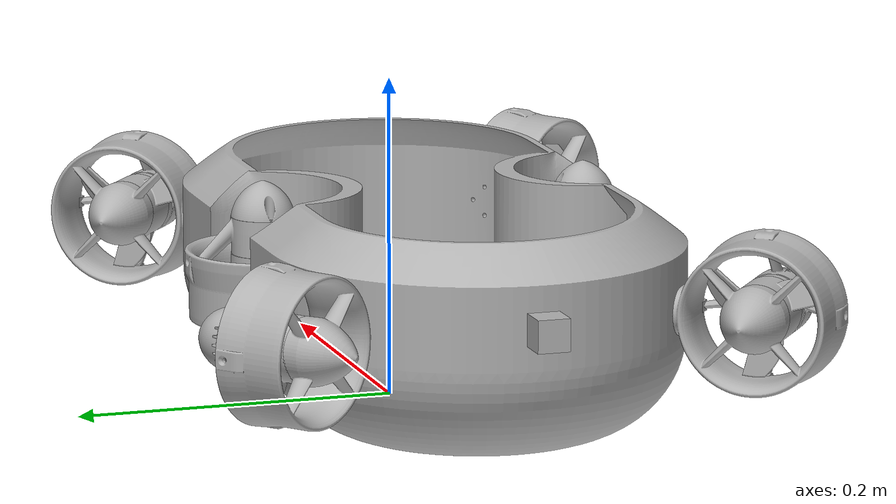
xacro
<?xml version="1.0" ?>
<robot name="Body" xmlns:xacro="http://www.ros.org/wiki/xacro">

<xacro:include filename="$(find fathom_description)/urdf/materials.xacro" />
<xacro:include filename="$(find fathom_description)/urdf/Body.ros2control.xml" />
<xacro:include filename="$(find fathom_description)/urdf/Body.gazebo" />
<link name="base_link">
  <inertial>
    <origin xyz="-1.642714223150474e-09 -0.02560000631566277 0.04831529767943574" rpy="0 0 0"/>
    <mass value="3.567967703380248"/>
    <inertia ixx="0.024636" iyy="0.065446" izz="0.079052" ixy="0.0" iyz="0.0" ixz="0.0"/>
  </inertial>
  <visual>
    <origin xyz="0 0 0" rpy="0 0 0"/>
    <geometry>
      <mesh filename="file://$(find fathom_description)/meshes/base_link.stl" scale="0.001 0.001 0.001"/>
    </geometry>
    <material name="silver"/>
  </visual>
  <collision>
    <origin xyz="0 0 0" rpy="0 0 0"/>
    <geometry>
      <mesh filename="file://$(find fathom_description)/meshes/base_link.stl" scale="0.001 0.001 0.001"/>
    </geometry>
  </collision>
</link>

<link name="main_thruster_urdf_v1__3__1">
  <inertial>
    <origin xyz="-0.03721464935836896 -0.03219644369813632 -4.495782868901843e-07" rpy="0 0 0"/>
    <mass value="0.9025336978695421"/>
    <inertia ixx="0.001085" iyy="0.000969" izz="0.000828" ixy="-0.000223" iyz="0.0" ixz="-0.0"/>
  </inertial>
  <visual>
    <origin xyz="0.165824 0.134549 -0.082445" rpy="0 0 0"/>
    <geometry>
      <mesh filename="file://$(find fathom_description)/meshes/main_thruster_urdf_v1__3__1.stl" scale="0.001 0.001 0.001"/>
    </geometry>
    <material name="silver"/>
  </visual>
  <collision>
    <origin xyz="0.165824 0.134549 -0.082445" rpy="0 0 0"/>
    <geometry>
      <mesh filename="file://$(find fathom_description)/meshes/main_thruster_urdf_v1__3__1.stl" scale="0.001 0.001 0.001"/>
    </geometry>
  </collision>
</link>

<link name="main_thruster_urdf_v1__4__1">
  <inertial>
    <origin xyz="-5.825929008885102e-10 0.048203942385196284 -0.00989363829118968" rpy="0 0 0"/>
    <mass value="0.9025336978695421"/>
    <inertia ixx="0.000828" iyy="0.000797" izz="0.001257" ixy="-0.0" iyz="1e-06" ixz="-0.0"/>
  </inertial>
  <visual>
    <origin xyz="-0.0 -0.032424 -0.081" rpy="0 0 0"/>
    <geometry>
      <mesh filename="file://$(find fathom_description)/meshes/main_thruster_urdf_v1__4__1.stl" scale="0.001 0.001 0.001"/>
    </geometry>
    <material name="silver"/>
  </visual>
  <collision>
    <origin xyz="-0.0 -0.032424 -0.081" rpy="0 0 0"/>
    <geometry>
      <mesh filename="file://$(find fathom_description)/meshes/main_thruster_urdf_v1__4__1.stl" scale="0.001 0.001 0.001"/>
    </geometry>
  </collision>
</link>

<link name="main_thruster_urdf_v1__1__1">
  <inertial>
    <origin xyz="5.825929015798194e-10 -0.04220394238519634 -0.009893638291189735" rpy="0 0 0"/>
    <mass value="0.9025336978695421"/>
    <inertia ixx="0.000828" iyy="0.000797" izz="0.001257" ixy="-0.0" iyz="-1e-06" ixz="0.0"/>
  </inertial>
  <visual>
    <origin xyz="-0.0 0.083624 -0.081" rpy="0 0 0"/>
    <geometry>
      <mesh filename="file://$(find fathom_description)/meshes/main_thruster_urdf_v1__1__1.stl" scale="0.001 0.001 0.001"/>
    </geometry>
    <material name="silver"/>
  </visual>
  <collision>
    <origin xyz="-0.0 0.083624 -0.081" rpy="0 0 0"/>
    <geometry>
      <mesh filename="file://$(find fathom_description)/meshes/main_thruster_urdf_v1__1__1.stl" scale="0.001 0.001 0.001"/>
    </geometry>
  </collision>
</link>

<link name="main_thruster_urdf_v1__2__1">
  <inertial>
    <origin xyz="0.021524866496880346 -0.044251705106683345 -4.4957828670977307e-07" rpy="0 0 0"/>
    <mass value="0.9025336978695421"/>
    <inertia ixx="0.001088" iyy="0.000966" izz="0.000828" ixy="0.000222" iyz="0.0" ixz="-0.0"/>
  </inertial>
  <visual>
    <origin xyz="-0.180164 0.12215 -0.082445" rpy="0 0 0"/>
    <geometry>
      <mesh filename="file://$(find fathom_description)/meshes/main_thruster_urdf_v1__2__1.stl" scale="0.001 0.001 0.001"/>
    </geometry>
    <material name="silver"/>
  </visual>
  <collision>
    <origin xyz="-0.180164 0.12215 -0.082445" rpy="0 0 0"/>
    <geometry>
      <mesh filename="file://$(find fathom_description)/meshes/main_thruster_urdf_v1__2__1.stl" scale="0.001 0.001 0.001"/>
    </geometry>
  </collision>
</link>

<link name="main_thruster_urdf_v1_1">
  <inertial>
    <origin xyz="0.021524939518667352 0.04425164374676878 -4.4841310072041285e-07" rpy="0 0 0"/>
    <mass value="0.9025336978695421"/>
    <inertia ixx="0.001088" iyy="0.000966" izz="0.000828" ixy="-0.000222" iyz="0.0" ixz="0.0"/>
  </inertial>
  <visual>
    <origin xyz="-0.181006 -0.072046 -0.082445" rpy="0 0 0"/>
    <geometry>
      <mesh filename="file://$(find fathom_description)/meshes/main_thruster_urdf_v1_1.stl" scale="0.001 0.001 0.001"/>
    </geometry>
    <material name="silver"/>
  </visual>
  <collision>
    <origin xyz="-0.181006 -0.072046 -0.082445" rpy="0 0 0"/>
    <geometry>
      <mesh filename="file://$(find fathom_description)/meshes/main_thruster_urdf_v1_1.stl" scale="0.001 0.001 0.001"/>
    </geometry>
  </collision>
</link>

<link name="hello_1">
  <inertial>
    <origin xyz="-0.037214492439706676 0.032196580055163626 -4.4841310060939055e-07" rpy="0 0 0"/>
    <mass value="0.9025336978695421"/>
    <inertia ixx="0.001085" iyy="0.000969" izz="0.000828" ixy="0.000223" iyz="0.0" ixz="0.0"/>
  </inertial>
  <visual>
    <origin xyz="0.165039 -0.082327 -0.082445" rpy="0 0 0"/>
    <geometry>
      <mesh filename="file://$(find fathom_description)/meshes/hello_1.stl" scale="0.001 0.001 0.001"/>
    </geometry>
    <material name="silver"/>
  </visual>
  <collision>
    <origin xyz="0.165039 -0.082327 -0.082445" rpy="0 0 0"/>
    <geometry>
      <mesh filename="file://$(find fathom_description)/meshes/hello_1.stl" scale="0.001 0.001 0.001"/>
    </geometry>
  </collision>
</link>

<link name="pro_thru_urdf_v1__4__1">
  <inertial>
    <origin xyz="-2.0026821119551342e-07 -1.567978892974553e-07 0.011172331047509643" rpy="0 0 0"/>
    <mass value="0.06247004422548632"/>
    <inertia ixx="1.9e-05" iyy="1.9e-05" izz="2.9e-05" ixy="0.0" iyz="0.0" ixz="0.0"/>
  </inertial>
  <visual>
    <origin xyz="0.00011 -0.081424 -0.066709" rpy="0 0 0"/>
    <geometry>
      <mesh filename="file://$(find fathom_description)/meshes/pro_thru_urdf_v1__4__1.stl" scale="0.001 0.001 0.001"/>
    </geometry>
    <material name="silver"/>
  </visual>
  <collision>
    <origin xyz="0.00011 -0.081424 -0.066709" rpy="0 0 0"/>
    <geometry>
      <mesh filename="file://$(find fathom_description)/meshes/pro_thru_urdf_v1__4__1.stl" scale="0.001 0.001 0.001"/>
    </geometry>
  </collision>
</link>

<link name="pro_thru_urdf_v1__5__1">
  <inertial>
    <origin xyz="0.00885894015052649 0.006807356288790395 -4.0946181681378313e-07" rpy="0 0 0"/>
    <mass value="0.06247004422548632"/>
    <inertia ixx="2.5e-05" iyy="2.3e-05" izz="1.9e-05" ixy="5e-06" iyz="0.0" ixz="-0.0"/>
  </inertial>
  <visual>
    <origin xyz="-0.19862 0.169625 -0.082445" rpy="0 0 0"/>
    <geometry>
      <mesh filename="file://$(find fathom_description)/meshes/pro_thru_urdf_v1__5__1.stl" scale="0.001 0.001 0.001"/>
    </geometry>
    <material name="silver"/>
  </visual>
  <collision>
    <origin xyz="-0.19862 0.169625 -0.082445" rpy="0 0 0"/>
    <geometry>
      <mesh filename="file://$(find fathom_description)/meshes/pro_thru_urdf_v1__5__1.stl" scale="0.001 0.001 0.001"/>
    </geometry>
  </collision>
</link>

<link name="pro_thru_urdf_v1__2__1">
  <inertial>
    <origin xyz="0.008859165393431512 -0.006807020579821119 4.064635554801299e-07" rpy="0 0 0"/>
    <mass value="0.06247004422548632"/>
    <inertia ixx="2.5e-05" iyy="2.3e-05" izz="1.9e-05" ixy="-5e-06" iyz="0.0" ixz="0.0"/>
  </inertial>
  <visual>
    <origin xyz="-0.199529 -0.119608 -0.082334" rpy="0 0 0"/>
    <geometry>
      <mesh filename="file://$(find fathom_description)/meshes/pro_thru_urdf_v1__2__1.stl" scale="0.001 0.001 0.001"/>
    </geometry>
    <material name="silver"/>
  </visual>
  <collision>
    <origin xyz="-0.199529 -0.119608 -0.082334" rpy="0 0 0"/>
    <geometry>
      <mesh filename="file://$(find fathom_description)/meshes/pro_thru_urdf_v1__2__1.stl" scale="0.001 0.001 0.001"/>
    </geometry>
  </collision>
</link>

<link name="pro_thru_urdf_v1__1__1">
  <inertial>
    <origin xyz="-1.4454075079677834e-07 1.0107042899831775e-07 0.011172331047510711" rpy="0 0 0"/>
    <mass value="0.06247004422548632"/>
    <inertia ixx="1.9e-05" iyy="1.9e-05" izz="2.9e-05" ixy="-0.0" iyz="0.0" ixz="-0.0"/>
  </inertial>
  <visual>
    <origin xyz="0.00011 0.126624 -0.066709" rpy="0 0 0"/>
    <geometry>
      <mesh filename="file://$(find fathom_description)/meshes/pro_thru_urdf_v1__1__1.stl" scale="0.001 0.001 0.001"/>
    </geometry>
    <material name="silver"/>
  </visual>
  <collision>
    <origin xyz="0.00011 0.126624 -0.066709" rpy="0 0 0"/>
    <geometry>
      <mesh filename="file://$(find fathom_description)/meshes/pro_thru_urdf_v1__1__1.stl" scale="0.001 0.001 0.001"/>
    </geometry>
  </collision>
</link>

<link name="pro_thru_urdf_v1_1">
  <inertial>
    <origin xyz="0.008858682154653963 -0.006806403194302757 4.0646355511930743e-07" rpy="0 0 0"/>
    <mass value="0.06247004422548632"/>
    <inertia ixx="2.5e-05" iyy="2.3e-05" izz="1.9e-05" ixy="-5e-06" iyz="0.0" ixz="0.0"/>
  </inertial>
  <visual>
    <origin xyz="0.20701 0.164698 -0.082334" rpy="0 0 0"/>
    <geometry>
      <mesh filename="file://$(find fathom_description)/meshes/pro_thru_urdf_v1_1.stl" scale="0.001 0.001 0.001"/>
    </geometry>
    <material name="silver"/>
  </visual>
  <collision>
    <origin xyz="0.20701 0.164698 -0.082334" rpy="0 0 0"/>
    <geometry>
      <mesh filename="file://$(find fathom_description)/meshes/pro_thru_urdf_v1_1.stl" scale="0.001 0.001 0.001"/>
    </geometry>
  </collision>
</link>

<link name="support_thru_urdf_v1__5__1">
  <inertial>
    <origin xyz="0.0004906283719715299 -0.0003762814257698699 0.043657478810742986" rpy="0 0 0"/>
    <mass value="0.5240955387817633"/>
    <inertia ixx="0.00015" iyy="0.000162" izz="0.000179" ixy="2.2e-05" iyz="-0.0" ixz="0.0"/>
  </inertial>
  <visual>
    <origin xyz="0.186462 0.180486 -0.038672" rpy="0 0 0"/>
    <geometry>
      <mesh filename="file://$(find fathom_description)/meshes/support_thru_urdf_v1__5__1.stl" scale="0.001 0.001 0.001"/>
    </geometry>
    <material name="silver"/>
  </visual>
  <collision>
    <origin xyz="0.186462 0.180486 -0.038672" rpy="0 0 0"/>
    <geometry>
      <mesh filename="file://$(find fathom_description)/meshes/support_thru_urdf_v1__5__1.stl" scale="0.001 0.001 0.001"/>
    </geometry>
  </collision>
</link>

<link name="support_thru_urdf_v1__4__1">
  <inertial>
    <origin xyz="0.04365792780643713 -4.37081340565193e-07 0.0006180502689701189" rpy="0 0 0"/>
    <mass value="0.5240955387817633"/>
    <inertia ixx="0.000179" iyy="0.000179" izz="0.000133" ixy="0.0" iyz="0.0" ixz="0.0"/>
  </inertial>
  <visual>
    <origin xyz="0.043773 0.126624 -0.092623" rpy="0 0 0"/>
    <geometry>
      <mesh filename="file://$(find fathom_description)/meshes/support_thru_urdf_v1__4__1.stl" scale="0.001 0.001 0.001"/>
    </geometry>
    <material name="silver"/>
  </visual>
  <collision>
    <origin xyz="0.043773 0.126624 -0.092623" rpy="0 0 0"/>
    <geometry>
      <mesh filename="file://$(find fathom_description)/meshes/support_thru_urdf_v1__4__1.stl" scale="0.001 0.001 0.001"/>
    </geometry>
  </collision>
</link>

<link name="support_thru_urdf_v1__3__1">
  <inertial>
    <origin xyz="0.0004901116107489667 -0.000375898811287953 0.043657478810743416" rpy="0 0 0"/>
    <mass value="0.5240955387817633"/>
    <inertia ixx="0.00015" iyy="0.000162" izz="0.000179" ixy="2.2e-05" iyz="-0.0" ixz="0.0"/>
  </inertial>
  <visual>
    <origin xyz="-0.220078 -0.103819 -0.038672" rpy="0 0 0"/>
    <geometry>
      <mesh filename="file://$(find fathom_description)/meshes/support_thru_urdf_v1__3__1.stl" scale="0.001 0.001 0.001"/>
    </geometry>
    <material name="silver"/>
  </visual>
  <collision>
    <origin xyz="-0.220078 -0.103819 -0.038672" rpy="0 0 0"/>
    <geometry>
      <mesh filename="file://$(find fathom_description)/meshes/support_thru_urdf_v1__3__1.stl" scale="0.001 0.001 0.001"/>
    </geometry>
  </collision>
</link>

<link name="support_thru_urdf_v1__2__1">
  <inertial>
    <origin xyz="0.027092230602163175 -0.03424591201581477 -5.337114628994888e-06" rpy="0 0 0"/>
    <mass value="0.5240955387817633"/>
    <inertia ixx="0.00015" iyy="0.000162" izz="0.000179" ixy="-2.2e-05" iyz="0.0" ixz="0.0"/>
  </inertial>
  <visual>
    <origin xyz="-0.192566 0.119213 -0.082445" rpy="0 0 0"/>
    <geometry>
      <mesh filename="file://$(find fathom_description)/meshes/support_thru_urdf_v1__2__1.stl" scale="0.001 0.001 0.001"/>
    </geometry>
    <material name="silver"/>
  </visual>
  <collision>
    <origin xyz="-0.192566 0.119213 -0.082445" rpy="0 0 0"/>
    <geometry>
      <mesh filename="file://$(find fathom_description)/meshes/support_thru_urdf_v1__2__1.stl" scale="0.001 0.001 0.001"/>
    </geometry>
  </collision>
</link>

<link name="support_thru_urdf_v1_1">
  <inertial>
    <origin xyz="0.043662261580020234 4.770854922758749e-06 0.0006180502689701883" rpy="0 0 0"/>
    <mass value="0.5240955387817633"/>
    <inertia ixx="0.000179" iyy="0.000179" izz="0.000133" ixy="-0.0" iyz="-0.0" ixz="0.0"/>
  </inertial>
  <visual>
    <origin xyz="0.043773 -0.081424 -0.092623" rpy="0 0 0"/>
    <geometry>
      <mesh filename="file://$(find fathom_description)/meshes/support_thru_urdf_v1_1.stl" scale="0.001 0.001 0.001"/>
    </geometry>
    <material name="silver"/>
  </visual>
  <collision>
    <origin xyz="0.043773 -0.081424 -0.092623" rpy="0 0 0"/>
    <geometry>
      <mesh filename="file://$(find fathom_description)/meshes/support_thru_urdf_v1_1.stl" scale="0.001 0.001 0.001"/>
    </geometry>
  </collision>
</link>

<link name="pro_thru_urdf_v1__3__1">
  <inertial>
    <origin xyz="0.008858805119924124 0.006806583740888633 3.507360955001815e-07" rpy="0 0 0"/>
    <mass value="0.06247004422548632"/>
    <inertia ixx="2.5e-05" iyy="2.3e-05" izz="1.9e-05" ixy="5e-06" iyz="-0.0" ixz="0.0"/>
  </inertial>
  <visual>
    <origin xyz="0.206225 -0.112476 -0.082334" rpy="0 0 0"/>
    <geometry>
      <mesh filename="file://$(find fathom_description)/meshes/pro_thru_urdf_v1__3__1.stl" scale="0.001 0.001 0.001"/>
    </geometry>
    <material name="silver"/>
  </visual>
  <collision>
    <origin xyz="0.206225 -0.112476 -0.082334" rpy="0 0 0"/>
    <geometry>
      <mesh filename="file://$(find fathom_description)/meshes/pro_thru_urdf_v1__3__1.stl" scale="0.001 0.001 0.001"/>
    </geometry>
  </collision>
</link>

<link name="support_thru_urdf_v1__1__1">
  <inertial>
    <origin xyz="0.0004934257539291054 0.00037298128064372493 0.04366181258432679" rpy="0 0 0"/>
    <mass value="0.5240955387817633"/>
    <inertia ixx="0.00015" iyy="0.000162" izz="0.000179" ixy="-2.2e-05" iyz="0.0" ixz="-0.0"/>
  </inertial>
  <visual>
    <origin xyz="0.185677 -0.128264 -0.038672" rpy="0 0 0"/>
    <geometry>
      <mesh filename="file://$(find fathom_description)/meshes/support_thru_urdf_v1__1__1.stl" scale="0.001 0.001 0.001"/>
    </geometry>
    <material name="silver"/>
  </visual>
  <collision>
    <origin xyz="0.185677 -0.128264 -0.038672" rpy="0 0 0"/>
    <geometry>
      <mesh filename="file://$(find fathom_description)/meshes/support_thru_urdf_v1__1__1.stl" scale="0.001 0.001 0.001"/>
    </geometry>
  </collision>
</link>

<link name="back_thru_urdf_v1__4__1">
  <inertial>
    <origin xyz="-0.0014297582049557223 0.01892120855582738 0.0007229818356684486" rpy="0 0 0"/>
    <mass value="0.03746286794566644"/>
    <inertia ixx="8e-06" iyy="7e-06" izz="6e-06" ixy="1e-06" iyz="0.0" ixz="0.0"/>
  </inertial>
  <visual>
    <origin xyz="-0.249559 0.150505 -0.082445" rpy="0 0 0"/>
    <geometry>
      <mesh filename="file://$(find fathom_description)/meshes/back_thru_urdf_v1__4__1.stl" scale="0.001 0.001 0.001"/>
    </geometry>
    <material name="silver"/>
  </visual>
  <collision>
    <origin xyz="-0.249559 0.150505 -0.082445" rpy="0 0 0"/>
    <geometry>
      <mesh filename="file://$(find fathom_description)/meshes/back_thru_urdf_v1__4__1.stl" scale="0.001 0.001 0.001"/>
    </geometry>
  </collision>
</link>

<link name="back_thru_urdf_v1__5__1">
  <inertial>
    <origin xyz="-0.0014305526947672176 -0.018920898528533528 -0.0007230639016837098" rpy="0 0 0"/>
    <mass value="0.03746286794566644"/>
    <inertia ixx="8e-06" iyy="7e-06" izz="6e-06" ixy="-1e-06" iyz="0.0" ixz="-0.0"/>
  </inertial>
  <visual>
    <origin xyz="-0.250469 -0.100488 -0.082334" rpy="0 0 0"/>
    <geometry>
      <mesh filename="file://$(find fathom_description)/meshes/back_thru_urdf_v1__5__1.stl" scale="0.001 0.001 0.001"/>
    </geometry>
    <material name="silver"/>
  </visual>
  <collision>
    <origin xyz="-0.250469 -0.100488 -0.082334" rpy="0 0 0"/>
    <geometry>
      <mesh filename="file://$(find fathom_description)/meshes/back_thru_urdf_v1__5__1.stl" scale="0.001 0.001 0.001"/>
    </geometry>
  </collision>
</link>

<link name="back_thru_urdf_v1__3__1">
  <inertial>
    <origin xyz="-0.015875101313479294 -0.0007235480953746293 0.007219358895695388" rpy="0 0 0"/>
    <mass value="0.03746286794566644"/>
    <inertia ixx="6e-06" iyy="6e-06" izz="9e-06" ixy="0.0" iyz="-0.0" ixz="-0.0"/>
  </inertial>
  <visual>
    <origin xyz="-0.015765 -0.081424 -0.118751" rpy="0 0 0"/>
    <geometry>
      <mesh filename="file://$(find fathom_description)/meshes/back_thru_urdf_v1__3__1.stl" scale="0.001 0.001 0.001"/>
    </geometry>
    <material name="silver"/>
  </visual>
  <collision>
    <origin xyz="-0.015765 -0.081424 -0.118751" rpy="0 0 0"/>
    <geometry>
      <mesh filename="file://$(find fathom_description)/meshes/back_thru_urdf_v1__3__1.stl" scale="0.001 0.001 0.001"/>
    </geometry>
  </collision>
</link>

<link name="back_thru_urdf_v1__2__1">
  <inertial>
    <origin xyz="0.0007232467567344729 -0.015874799974839995 0.007219358895695249" rpy="0 0 0"/>
    <mass value="0.03746286794566644"/>
    <inertia ixx="6e-06" iyy="6e-06" izz="9e-06" ixy="-0.0" iyz="-0.0" ixz="0.0"/>
  </inertial>
  <visual>
    <origin xyz="0.00011 0.110749 -0.118751" rpy="0 0 0"/>
    <geometry>
      <mesh filename="file://$(find fathom_description)/meshes/back_thru_urdf_v1__2__1.stl" scale="0.001 0.001 0.001"/>
    </geometry>
    <material name="silver"/>
  </visual>
  <collision>
    <origin xyz="0.00011 0.110749 -0.118751" rpy="0 0 0"/>
    <geometry>
      <mesh filename="file://$(find fathom_description)/meshes/back_thru_urdf_v1__2__1.stl" scale="0.001 0.001 0.001"/>
    </geometry>
  </collision>
</link>

<link name="back_thru_urdf_v1__1__1">
  <inertial>
    <origin xyz="0.008682839447360452 0.00575883257370749 -0.015874715831469863" rpy="0 0 0"/>
    <mass value="0.03746286794566644"/>
    <inertia ixx="8e-06" iyy="7e-06" izz="6e-06" ixy="1e-06" iyz="-0.0" ixz="0.0"/>
  </inertial>
  <visual>
    <origin xyz="0.164958 -0.144184 -0.098209" rpy="0 0 0"/>
    <geometry>
      <mesh filename="file://$(find fathom_description)/meshes/back_thru_urdf_v1__1__1.stl" scale="0.001 0.001 0.001"/>
    </geometry>
    <material name="silver"/>
  </visual>
  <collision>
    <origin xyz="0.164958 -0.144184 -0.098209" rpy="0 0 0"/>
    <geometry>
      <mesh filename="file://$(find fathom_description)/meshes/back_thru_urdf_v1__1__1.stl" scale="0.001 0.001 0.001"/>
    </geometry>
  </collision>
</link>

<link name="back_thru_urdf_v1_1">
  <inertial>
    <origin xyz="0.0179139640664554 0.006255718856984643 -0.0007230639016839874" rpy="0 0 0"/>
    <mass value="0.03746286794566644"/>
    <inertia ixx="8e-06" iyy="7e-06" izz="6e-06" ixy="-1e-06" iyz="0.0" ixz="-0.0"/>
  </inertial>
  <visual>
    <origin xyz="0.175415 0.208994 -0.082334" rpy="0 0 0"/>
    <geometry>
      <mesh filename="file://$(find fathom_description)/meshes/back_thru_urdf_v1_1.stl" scale="0.001 0.001 0.001"/>
    </geometry>
    <material name="silver"/>
  </visual>
  <collision>
    <origin xyz="0.175415 0.208994 -0.082334" rpy="0 0 0"/>
    <geometry>
      <mesh filename="file://$(find fathom_description)/meshes/back_thru_urdf_v1_1.stl" scale="0.001 0.001 0.001"/>
    </geometry>
  </collision>
</link>

<link name="camera_1">
  <inertial>
    <origin xyz="0.010000000000000092 -2.0816681711721685e-17 1.3877787807814457e-17" rpy="0 0 0"/>
    <mass value="0.0628"/>
    <inertia ixx="4e-06" iyy="4e-06" izz="4e-06" ixy="0.0" iyz="-0.0" ixz="0.0"/>
  </inertial>
  <visual>
    <origin xyz="-0.224 0.0256 -0.089885" rpy="0 0 0"/>
    <geometry>
      <mesh filename="file://$(find fathom_description)/meshes/camera_1.stl" scale="0.001 0.001 0.001"/>
    </geometry>
    <material name="silver"/>
  </visual>
  <collision>
    <origin xyz="-0.224 0.0256 -0.089885" rpy="0 0 0"/>
    <geometry>
      <mesh filename="file://$(find fathom_description)/meshes/camera_1.stl" scale="0.001 0.001 0.001"/>
    </geometry>
  </collision>
</link>

<link name="sensor_1">
  <inertial>
    <origin xyz="-0.010000000000000092 -2.0816681711721685e-17 1.3877787807814457e-17" rpy="0 0 0"/>
    <mass value="0.0628"/>
    <inertia ixx="4e-06" iyy="4e-06" izz="4e-06" ixy="0.0" iyz="-0.0" ixz="-0.0"/>
  </inertial>
  <visual>
    <origin xyz="0.224 0.0256 -0.089885" rpy="0 0 0"/>
    <geometry>
      <mesh filename="file://$(find fathom_description)/meshes/sensor_1.stl" scale="0.001 0.001 0.001"/>
    </geometry>
    <material name="silver"/>
  </visual>
  <collision>
    <origin xyz="0.224 0.0256 -0.089885" rpy="0 0 0"/>
    <geometry>
      <mesh filename="file://$(find fathom_description)/meshes/sensor_1.stl" scale="0.001 0.001 0.001"/>
    </geometry>
  </collision>
</link>

<joint name="Rigid 1" type="fixed">
  <origin xyz="-0.165824 -0.134549 0.082445" rpy="0 0 0"/>
  <parent link="base_link"/>
  <child link="main_thruster_urdf_v1__3__1"/>
</joint>

<joint name="Rigid 2" type="fixed">
  <origin xyz="0.0 0.032424 0.081" rpy="0 0 0"/>
  <parent link="base_link"/>
  <child link="main_thruster_urdf_v1__4__1"/>
</joint>

<joint name="Rigid 3" type="fixed">
  <origin xyz="0.0 -0.083624 0.081" rpy="0 0 0"/>
  <parent link="base_link"/>
  <child link="main_thruster_urdf_v1__1__1"/>
</joint>

<joint name="Rigid 4" type="fixed">
  <origin xyz="0.180164 -0.12215 0.082445" rpy="0 0 0"/>
  <parent link="base_link"/>
  <child link="main_thruster_urdf_v1__2__1"/>
</joint>

<joint name="Rigid 5" type="fixed">
  <origin xyz="0.181006 0.072046 0.082445" rpy="0 0 0"/>
  <parent link="base_link"/>
  <child link="main_thruster_urdf_v1_1"/>
</joint>

<joint name="Rigid 6" type="fixed">
  <origin xyz="-0.165039 0.082327 0.082445" rpy="0 0 0"/>
  <parent link="base_link"/>
  <child link="hello_1"/>
</joint>

<joint name="Revolute 7" type="continuous">
  <origin xyz="0.043663 0.0 -0.025914" rpy="0 0 0"/>
  <parent link="support_thru_urdf_v1_1"/>
  <child link="pro_thru_urdf_v1__4__1"/>
  <axis xyz="0.0 0.0 -1.0"/>
</joint>

<joint name="Revolute 8" type="continuous">
  <origin xyz="0.006054 -0.050412 0.0" rpy="0 0 0"/>
  <parent link="support_thru_urdf_v1__2__1"/>
  <child link="pro_thru_urdf_v1__5__1"/>
  <axis xyz="-0.792958 -0.609276 -0.0"/>
</joint>

<joint name="Revolute 10" type="continuous">
  <origin xyz="-0.020549 0.015789 0.043662" rpy="0 0 0"/>
  <parent link="support_thru_urdf_v1__3__1"/>
  <child link="pro_thru_urdf_v1__2__1"/>
  <axis xyz="-0.792958 0.609276 0.0"/>
</joint>

<joint name="Revolute 11" type="continuous">
  <origin xyz="0.043663 0.0 -0.025914" rpy="0 0 0"/>
  <parent link="support_thru_urdf_v1__4__1"/>
  <child link="pro_thru_urdf_v1__1__1"/>
  <axis xyz="0.0 -0.0 -1.0"/>
</joint>

<joint name="Revolute 12" type="continuous">
  <origin xyz="-0.020548 0.015788 0.043662" rpy="0 0 0"/>
  <parent link="support_thru_urdf_v1__5__1"/>
  <child link="pro_thru_urdf_v1_1"/>
  <axis xyz="-0.792958 0.609276 0.0"/>
</joint>

<joint name="Rigid 13" type="fixed">
  <origin xyz="-0.020638 -0.045937 -0.043773" rpy="0 0 0"/>
  <parent link="main_thruster_urdf_v1__3__1"/>
  <child link="support_thru_urdf_v1__5__1"/>
</joint>

<joint name="Rigid 14" type="fixed">
  <origin xyz="-0.043773 -0.043 0.011623" rpy="0 0 0"/>
  <parent link="main_thruster_urdf_v1__1__1"/>
  <child link="support_thru_urdf_v1__4__1"/>
</joint>

<joint name="Rigid 15" type="fixed">
  <origin xyz="0.039072 0.031773 -0.043773" rpy="0 0 0"/>
  <parent link="main_thruster_urdf_v1_1"/>
  <child link="support_thru_urdf_v1__3__1"/>
</joint>

<joint name="Rigid 16" type="fixed">
  <origin xyz="0.012402 0.002937 0.0" rpy="0 0 0"/>
  <parent link="main_thruster_urdf_v1__2__1"/>
  <child link="support_thru_urdf_v1__2__1"/>
</joint>

<joint name="Rigid 17" type="fixed">
  <origin xyz="-0.043773 0.049 0.011623" rpy="0 0 0"/>
  <parent link="main_thruster_urdf_v1__4__1"/>
  <child link="support_thru_urdf_v1_1"/>
</joint>

<joint name="Revolute 18" type="continuous">
  <origin xyz="-0.020548 -0.015788 0.043662" rpy="0 0 0"/>
  <parent link="support_thru_urdf_v1__1__1"/>
  <child link="pro_thru_urdf_v1__3__1"/>
  <axis xyz="-0.792958 -0.609276 -0.0"/>
</joint>

<joint name="Rigid 19" type="fixed">
  <origin xyz="-0.020638 0.045937 -0.043773" rpy="0 0 0"/>
  <parent link="hello_1"/>
  <child link="support_thru_urdf_v1__1__1"/>
</joint>

<joint name="Rigid 20" type="fixed">
  <origin xyz="0.056993 -0.031292 0.0" rpy="0 0 0"/>
  <parent link="support_thru_urdf_v1__2__1"/>
  <child link="back_thru_urdf_v1__4__1"/>
</joint>

<joint name="Rigid 21" type="fixed">
  <origin xyz="0.030391 -0.003331 0.043662" rpy="0 0 0"/>
  <parent link="support_thru_urdf_v1__3__1"/>
  <child link="back_thru_urdf_v1__5__1"/>
</joint>

<joint name="Rigid 22" type="fixed">
  <origin xyz="0.059538 0.0 0.026128" rpy="0 0 0"/>
  <parent link="support_thru_urdf_v1_1"/>
  <child link="back_thru_urdf_v1__3__1"/>
</joint>

<joint name="Rigid 23" type="fixed">
  <origin xyz="0.043663 0.015875 0.026128" rpy="0 0 0"/>
  <parent link="support_thru_urdf_v1__4__1"/>
  <child link="back_thru_urdf_v1__2__1"/>
</joint>

<joint name="Rigid 24" type="fixed">
  <origin xyz="0.020719 0.01592 0.059537" rpy="0 0 0"/>
  <parent link="support_thru_urdf_v1__1__1"/>
  <child link="back_thru_urdf_v1__1__1"/>
</joint>

<joint name="Rigid 25" type="fixed">
  <origin xyz="0.011047 -0.028508 0.043662" rpy="0 0 0"/>
  <parent link="support_thru_urdf_v1__5__1"/>
  <child link="back_thru_urdf_v1_1"/>
</joint>

<joint name="Rigid 26" type="fixed">
  <origin xyz="0.224 -0.0256 0.089885" rpy="0 0 0"/>
  <parent link="base_link"/>
  <child link="camera_1"/>
</joint>

<joint name="Rigid 27" type="fixed">
  <origin xyz="-0.224 -0.0256 0.089885" rpy="0 0 0"/>
  <parent link="base_link"/>
  <child link="sensor_1"/>
</joint>

</robot>

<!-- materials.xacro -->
<robot name="Body" xmlns:xacro="http://www.ros.org/wiki/xacro" >

<material name="silver">
  <color rgba="0.700 0.700 0.700 1.000"/>
</material>

</robot>

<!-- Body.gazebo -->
<robot name="Body" xmlns:xacro="http://www.ros.org/wiki/xacro" >

<xacro:property name="body_color" value="Gazebo/Silver" />

<gazebo reference="base_link">
  <material>${body_color}</material>
  <mu1>0.2</mu1>
  <mu2>0.2</mu2>
  <self_collide>true</self_collide>
  <gravity>true</gravity>
</gazebo>

<gazebo reference="main_thruster_urdf_v1__3__1">
  <material>${body_color}</material>
  <mu1>0.2</mu1>
  <mu2>0.2</mu2>
  <self_collide>true</self_collide>
</gazebo>

<gazebo reference="main_thruster_urdf_v1__4__1">
  <material>${body_color}</material>
  <mu1>0.2</mu1>
  <mu2>0.2</mu2>
  <self_collide>true</self_collide>
</gazebo>

<gazebo reference="main_thruster_urdf_v1__1__1">
  <material>${body_color}</material>
  <mu1>0.2</mu1>
  <mu2>0.2</mu2>
  <self_collide>true</self_collide>
</gazebo>

<gazebo reference="main_thruster_urdf_v1__2__1">
  <material>${body_color}</material>
  <mu1>0.2</mu1>
  <mu2>0.2</mu2>
  <self_collide>true</self_collide>
</gazebo>

<gazebo reference="main_thruster_urdf_v1_1">
  <material>${body_color}</material>
  <mu1>0.2</mu1>
  <mu2>0.2</mu2>
  <self_collide>true</self_collide>
</gazebo>

<gazebo reference="hello_1">
  <material>${body_color}</material>
  <mu1>0.2</mu1>
  <mu2>0.2</mu2>
  <self_collide>true</self_collide>
</gazebo>

<gazebo reference="pro_thru_urdf_v1__4__1">
  <material>${body_color}</material>
  <mu1>0.2</mu1>
  <mu2>0.2</mu2>
  <self_collide>true</self_collide>
</gazebo>

<gazebo reference="pro_thru_urdf_v1__5__1">
  <material>${body_color}</material>
  <mu1>0.2</mu1>
  <mu2>0.2</mu2>
  <self_collide>true</self_collide>
</gazebo>

<gazebo reference="pro_thru_urdf_v1__2__1">
  <material>${body_color}</material>
  <mu1>0.2</mu1>
  <mu2>0.2</mu2>
  <self_collide>true</self_collide>
</gazebo>

<gazebo reference="pro_thru_urdf_v1__1__1">
  <material>${body_color}</material>
  <mu1>0.2</mu1>
  <mu2>0.2</mu2>
  <self_collide>true</self_collide>
</gazebo>

<gazebo reference="pro_thru_urdf_v1_1">
  <material>${body_color}</material>
  <mu1>0.2</mu1>
  <mu2>0.2</mu2>
  <self_collide>true</self_collide>
</gazebo>

<gazebo reference="support_thru_urdf_v1__5__1">
  <material>${body_color}</material>
  <mu1>0.2</mu1>
  <mu2>0.2</mu2>
  <self_collide>true</self_collide>
</gazebo>

<gazebo reference="support_thru_urdf_v1__4__1">
  <material>${body_color}</material>
  <mu1>0.2</mu1>
  <mu2>0.2</mu2>
  <self_collide>true</self_collide>
</gazebo>

<gazebo reference="support_thru_urdf_v1__3__1">
  <material>${body_color}</material>
  <mu1>0.2</mu1>
  <mu2>0.2</mu2>
  <self_collide>true</self_collide>
</gazebo>

<gazebo reference="support_thru_urdf_v1__2__1">
  <material>${body_color}</material>
  <mu1>0.2</mu1>
  <mu2>0.2</mu2>
  <self_collide>true</self_collide>
</gazebo>

<gazebo reference="support_thru_urdf_v1_1">
  <material>${body_color}</material>
  <mu1>0.2</mu1>
  <mu2>0.2</mu2>
  <self_collide>true</self_collide>
</gazebo>

<gazebo reference="pro_thru_urdf_v1__3__1">
  <material>${body_color}</material>
  <mu1>0.2</mu1>
  <mu2>0.2</mu2>
  <self_collide>true</self_collide>
</gazebo>

<gazebo reference="support_thru_urdf_v1__1__1">
  <material>${body_color}</material>
  <mu1>0.2</mu1>
  <mu2>0.2</mu2>
  <self_collide>true</self_collide>
</gazebo>

<gazebo reference="back_thru_urdf_v1__4__1">
  <material>${body_color}</material>
  <mu1>0.2</mu1>
  <mu2>0.2</mu2>
  <self_collide>true</self_collide>
</gazebo>

<gazebo reference="back_thru_urdf_v1__5__1">
  <material>${body_color}</material>
  <mu1>0.2</mu1>
  <mu2>0.2</mu2>
  <self_collide>true</self_collide>
</gazebo>

<gazebo reference="back_thru_urdf_v1__3__1">
  <material>${body_color}</material>
  <mu1>0.2</mu1>
  <mu2>0.2</mu2>
  <self_collide>true</self_collide>
</gazebo>

<gazebo reference="back_thru_urdf_v1__2__1">
  <material>${body_color}</material>
  <mu1>0.2</mu1>
  <mu2>0.2</mu2>
  <self_collide>true</self_collide>
</gazebo>

<gazebo reference="back_thru_urdf_v1__1__1">
  <material>${body_color}</material>
  <mu1>0.2</mu1>
  <mu2>0.2</mu2>
  <self_collide>true</self_collide>
</gazebo>

<gazebo reference="back_thru_urdf_v1_1">
  <material>${body_color}</material>
  <mu1>0.2</mu1>
  <mu2>0.2</mu2>
  <self_collide>true</self_collide>
</gazebo>

<gazebo reference="camera_1">
  <material>${body_color}</material>
  <mu1>0.2</mu1>
  <mu2>0.2</mu2>
  <self_collide>true</self_collide>
</gazebo>

<gazebo reference="sensor_1">
  <material>${body_color}</material>
  <mu1>0.2</mu1>
  <mu2>0.2</mu2>
  <self_collide>true</self_collide>
</gazebo>

</robot>
